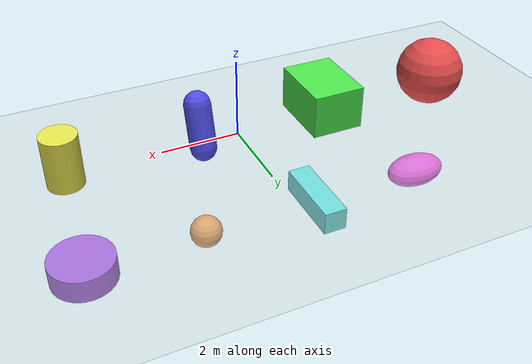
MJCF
<mujoco model="collision_shapes">
            <option gravity="0 0 -9.81" timestep="0.002"/>
            <worldbody>
                <!-- Ground plane -->
                <geom name="ground" type="plane" size="20 20 0.1" rgba="0.8 0.8 0.8 1"/>

                <!-- Row 1 (z=1.5): Sphere, Box, Capsule, Cylinder -->
                <body name="sphere" pos="-4.5 1.5 1.5">
                    <freejoint name="sphere_joint"/>
                    <geom name="sphere_geom" type="sphere" size="0.8" mass="1.0" rgba="0.9 0.3 0.3 1"/>
                </body>

                <body name="box" pos="-1.5 1.5 1.5">
                    <freejoint name="box_joint"/>
                    <geom name="box_geom" type="box" size="0.6 0.8 0.5" mass="1.0" rgba="0.3 0.9 0.3 1"/>
                </body>

                <body name="capsule" pos="1.5 1.5 1.5" euler="15 0 0">
                    <freejoint name="capsule_joint"/>
                    <geom name="capsule_geom" type="capsule" size="0.3 0.5" mass="1.0" rgba="0.3 0.3 0.9 1"/>
                </body>

                <body name="cylinder" pos="4.5 1.5 1.5">
                    <freejoint name="cylinder_joint"/>
                    <geom name="cylinder_geom" type="cylinder" size="0.4 0.6" mass="1.0" rgba="0.9 0.9 0.3 1"/>
                </body>

                <!-- Row 2 (z=-1.5): Ellipsoid, Tall Box, Small Sphere, Wide Cylinder -->
                <body name="ellipsoid" pos="-4.5 1.5 -1.5">
                    <freejoint name="ellipsoid_joint"/>
                    <geom name="ellipsoid_geom" type="ellipsoid" size="0.8 0.5 0.4" mass="1.0" rgba="0.9 0.3 0.9 1"/>
                </body>

                <body name="tall_box" pos="-1.5 1.5 -1.5">
                    <freejoint name="tall_box_joint"/>
                    <geom name="tall_box_geom" type="box" size="0.3 1.0 0.3" mass="1.0" rgba="0.3 0.9 0.9 1"/>
                </body>

                <body name="small_sphere" pos="1.5 1.5 -1.5">
                    <freejoint name="small_sphere_joint"/>
                    <geom name="small_sphere_geom" type="sphere" size="0.4" mass="1.0" rgba="0.9 0.6 0.3 1"/>
                </body>

                <body name="wide_cylinder" pos="4.5 1.5 -1.5">
                    <freejoint name="wide_cylinder_joint"/>
                    <geom name="wide_cylinder_geom" type="cylinder" size="0.8 0.3" mass="1.0" rgba="0.6 0.3 0.9 1"/>
                </body>
            </worldbody>
        </mujoco>
